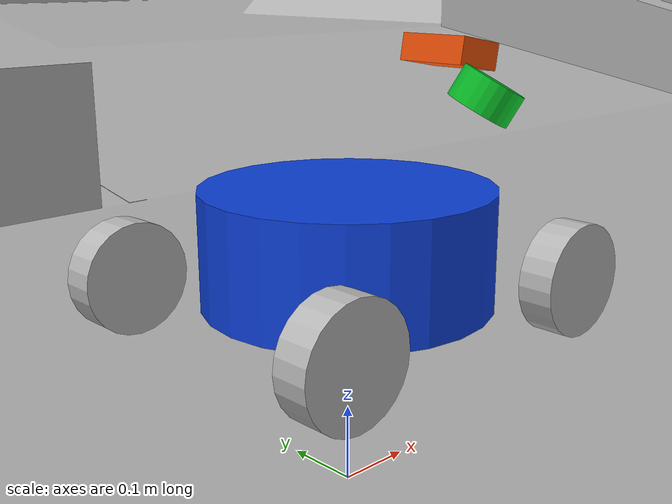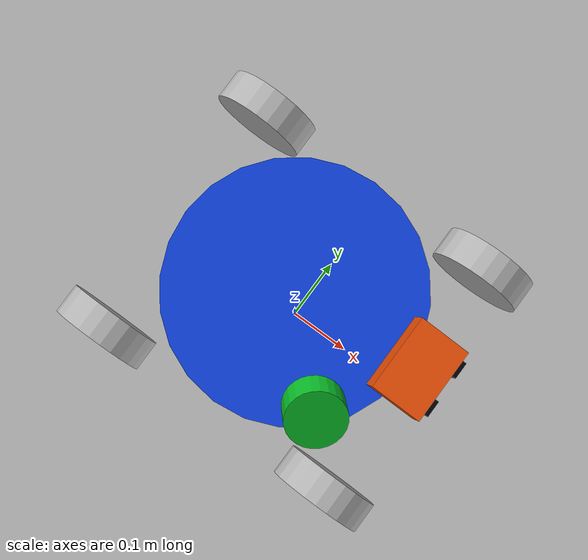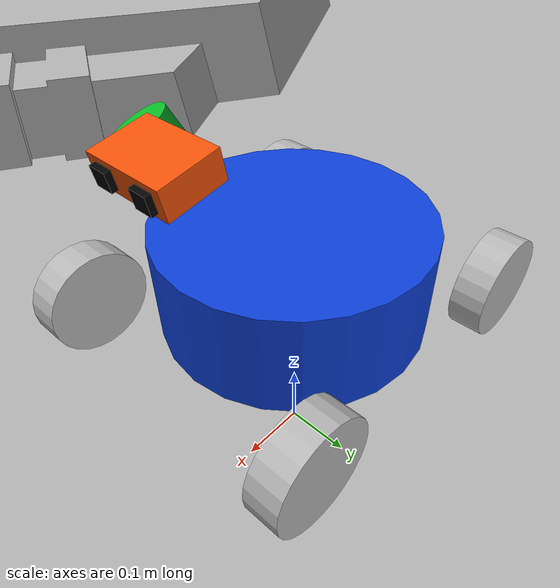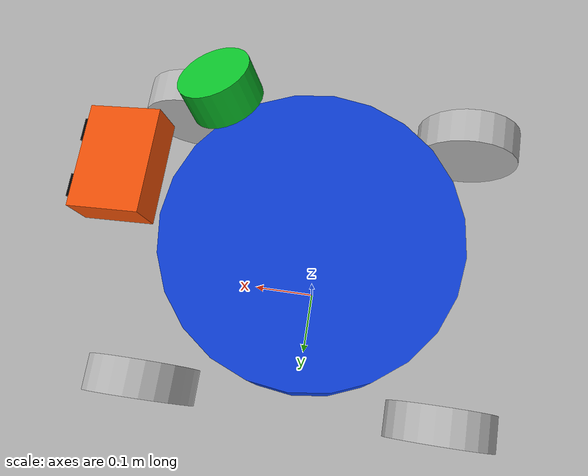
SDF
<?xml version="1.0"?>
<sdf version="1.9">
  <world name="rmuc_2025">
    <physics name="fast_step" type="ignored">
      <max_step_size>0.002</max_step_size>
      <real_time_factor>1.0</real_time_factor>
    </physics>
    <plugin filename="gz-sim-physics-system" name="gz::sim::systems::Physics"/>
    <plugin filename="gz-sim-user-commands-system" name="gz::sim::systems::UserCommands"/>
    <plugin filename="gz-sim-scene-broadcaster-system" name="gz::sim::systems::SceneBroadcaster"/>
    <plugin filename="gz-sim-sensors-system" name="gz::sim::systems::Sensors">
      <render_engine>ogre2</render_engine>
    </plugin>
    <plugin filename="gz-sim-imu-system" name="gz::sim::systems::Imu"/>

    <!-- Keep terrain readable on faces that are not reached by the sun. -->
    <scene>
      <ambient>0.45 0.45 0.45 1</ambient>
      <background>0.70 0.75 0.80 1</background>
      <shadows>true</shadows>
    </scene>

    <light type="directional" name="sun">
      <pose>0 0 12 0 0 0</pose>
      <cast_shadows>true</cast_shadows>
      <diffuse>0.95 0.95 0.92 1</diffuse>
      <specular>0.2 0.2 0.2 1</specular>
      <direction>-0.35 0.25 -0.9</direction>
    </light>
    <include>
      <uri>model://rmuc_2025</uri>
      <name>rmuc_2025_arena</name>
      <pose>-3.40 -9.50 0 0 0 0</pose>
    </include>
    <include>
      <uri>model://omni_base_mid360</uri>
      <name>omni_base</name>
      <pose>0 0 0.315 0 0 0</pose>
    </include>
    <model name="ground_plane">
      <static>true</static>
      <link name="link">
        <collision name="collision"><geometry><plane><normal>0 0 1</normal><size>100 100</size></plane></geometry></collision>
        <visual name="visual">
          <geometry><plane><normal>0 0 1</normal><size>100 100</size></plane></geometry>
          <material><ambient>0.50 0.50 0.50 1</ambient><diffuse>0.55 0.55 0.55 1</diffuse></material>
        </visual>
      </link>
    </model>
  </world>
</sdf>

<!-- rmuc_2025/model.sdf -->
<sdf version='1.6'>
  <model name='rmuc_2025'>
    <static>true</static>
    <link name='body'>
      <pose frame=''>14.5 8 0.2 0 0 0</pose>
      <self_collide>0</self_collide>
      <kinematic>0</kinematic>
      <gravity>1</gravity>
      <visual name='visual'>
        <geometry>
          <mesh>
            <!-- The display mesh omits four malformed 18.55 m perimeter walls. -->
            <uri>model://rmuc_2025/meshes/rmuc_2025_visual.stl</uri>
            <scale>1 1 1</scale>
          </mesh>
        </geometry>
        <material>
          <ambient>0.3 0.3 0.3 1</ambient>
          <diffuse>0.7 0.7 0.7 1</diffuse>
          <specular>0.01 0.01 0.01 1</specular>
        </material>
      </visual>
      <collision name='collision'>
        <geometry>
          <mesh>
            <uri>model://rmuc_2025/meshes/rmuc_2025.stl</uri>
            <scale>1 1 1</scale>
          </mesh>
        </geometry>
      </collision>
    </link>
  </model>
</sdf>

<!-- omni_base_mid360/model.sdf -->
<sdf version="1.9">
  <model name="omni_base_mid360" xmlns:gz="http://gazebosim.org/schema">
    <link name="base_link">
      <inertial>
        <mass>18.0</mass>
        <inertia>
          <ixx>0.176904</ixx>
          <iyy>0.176904</iyy>
          <izz>0.2916</izz>
        </inertia>
      </inertial>
      <collision name="collision">
        <geometry><cylinder><radius>0.18</radius><length>0.10</length></cylinder></geometry>
      </collision>
      <visual name="body">
        <geometry><cylinder><radius>0.18</radius><length>0.144</length></cylinder></geometry>
        <material>
          <ambient>0.04 0.18 0.55 1</ambient>
          <diffuse>0.05 0.25 0.85 1</diffuse>
        </material>
      </visual>
    </link>

    <!-- Gazebo cameras look along local +X. Positive pitch rotates +X toward
         the ground, so this mount faces forward with a 10-degree down tilt. -->
    <link name="oakd_camera_link">
      <pose relative_to="base_link">0.18 0 0.22 0 0.1745329252 0</pose>
      <inertial>
        <mass>0.1</mass>
        <inertia>
          <ixx>0.0002</ixx>
          <iyy>0.0002</iyy>
          <izz>0.0002</izz>
        </inertia>
      </inertial>
      <visual name="camera_body">
        <geometry><box><size>0.07 0.10 0.035</size></box></geometry>
        <material>
          <ambient>0.55 0.15 0.01 1</ambient>
          <diffuse>0.95 0.32 0.03 1</diffuse>
        </material>
      </visual>
      <visual name="left_lens">
        <pose>0.038 0.028 0 0 0 0</pose>
        <geometry><box><size>0.008 0.022 0.022</size></box></geometry>
        <material>
          <ambient>0.01 0.01 0.015 1</ambient>
          <diffuse>0.01 0.01 0.015 1</diffuse>
        </material>
      </visual>
      <visual name="right_lens">
        <pose>0.038 -0.028 0 0 0 0</pose>
        <geometry><box><size>0.008 0.022 0.022</size></box></geometry>
        <material>
          <ambient>0.01 0.01 0.015 1</ambient>
          <diffuse>0.01 0.01 0.015 1</diffuse>
        </material>
      </visual>
      <sensor name="oakd_imu" type="imu">
        <always_on>true</always_on>
        <update_rate>200</update_rate>
        <topic>/oakd/imu/raw</topic>
        <gz_frame_id>oakd_imu_link</gz_frame_id>
      </sensor>
      <sensor name="oakd_rgbd" type="rgbd_camera">
        <always_on>true</always_on>
        <update_rate>15</update_rate>
        <topic>rgbd_camera</topic>
        <camera>
          <horizontal_fov>1.21</horizontal_fov>
          <image>
            <width>640</width>
            <height>400</height>
          </image>
          <clip>
            <near>0.20</near>
            <far>8.0</far>
          </clip>
          <optical_frame_id>oakd_camera_optical_frame</optical_frame_id>
        </camera>
      </sensor>
    </link>
    <joint name="oakd_fixed_joint" type="fixed">
      <parent>base_link</parent>
      <child>oakd_camera_link</child>
    </joint>

    <link name="mid360_link">
      <pose relative_to="base_link">0.113137085 -0.113137085 0.18 0.5235987756 0 0.7853981634</pose>
      <inertial>
        <mass>0.265</mass>
        <inertia>
          <ixx>0.00035</ixx>
          <iyy>0.00035</iyy>
          <izz>0.00035</izz>
        </inertia>
      </inertial>
      <visual name="body">
        <geometry><cylinder><radius>0.04</radius><length>0.04</length></cylinder></geometry>
        <material>
          <ambient>0.02 0.38 0.08 1</ambient>
          <diffuse>0.04 0.75 0.16 1</diffuse>
        </material>
      </visual>
      <sensor name="mid360_imu" type="imu">
        <always_on>true</always_on>
        <update_rate>200</update_rate>
        <topic>/mid360/imu</topic>
        <gz_frame_id>mid360_link</gz_frame_id>
        <imu>
          <angular_velocity>
            <x><noise type="gaussian"><mean>0</mean><stddev>0.0002</stddev></noise></x>
            <y><noise type="gaussian"><mean>0</mean><stddev>0.0002</stddev></noise></y>
            <z><noise type="gaussian"><mean>0</mean><stddev>0.0002</stddev></noise></z>
          </angular_velocity>
          <linear_acceleration>
            <x><noise type="gaussian"><mean>0</mean><stddev>0.017</stddev></noise></x>
            <y><noise type="gaussian"><mean>0</mean><stddev>0.017</stddev></noise></y>
            <z><noise type="gaussian"><mean>0</mean><stddev>0.017</stddev></noise></z>
          </linear_acceleration>
        </imu>
      </sensor>
      <sensor name="mid360_lidar" type="gpu_lidar">
        <always_on>true</always_on>
        <visualize>false</visualize>
        <update_rate>20</update_rate>
        <topic>/mid360</topic>
        <gz_frame_id>mid360_link</gz_frame_id>
        <lidar>
          <scan>
            <horizontal>
              <samples>1875</samples>
              <resolution>1</resolution>
              <min_angle>0</min_angle>
              <max_angle>6.2831853072</max_angle>
            </horizontal>
            <vertical>
              <samples>32</samples>
              <resolution>1</resolution>
              <min_angle>-0.1221730476</min_angle>
              <max_angle>0.9075712110</max_angle>
            </vertical>
          </scan>
          <range>
            <min>0.10</min>
            <max>40.0</max>
            <resolution>0.01</resolution>
          </range>
          <noise>
            <type>gaussian</type>
            <mean>0</mean>
            <stddev>0.01</stddev>
          </noise>
        </lidar>
      </sensor>
    </link>
    <joint name="mid360_fixed_joint" type="fixed">
      <parent>base_link</parent>
      <child>mid360_link</child>
    </joint>

    <link name="front_left_wheel">
      <pose relative_to="base_link">0.19 0.19 -0.04 -1.5707 0 0</pose>
      <inertial><mass>0.8</mass><inertia><ixx>0.002</ixx><iyy>0.002</iyy><izz>0.001</izz></inertia></inertial>
      <collision name="collision">
        <geometry><sphere><radius>0.07</radius></sphere></geometry>
        <surface><friction><ode><mu>2.0</mu><mu2>0.6</mu2><fdir1 gz:expressed_in="base_link">1 -1 0</fdir1></ode></friction></surface>
      </collision>
      <visual name="visual"><geometry><cylinder><radius>0.07</radius><length>0.045</length></cylinder></geometry></visual>
    </link>
    <link name="front_right_wheel">
      <pose relative_to="base_link">0.19 -0.19 -0.04 -1.5707 0 0</pose>
      <inertial><mass>0.8</mass><inertia><ixx>0.002</ixx><iyy>0.002</iyy><izz>0.001</izz></inertia></inertial>
      <collision name="collision">
        <geometry><sphere><radius>0.07</radius></sphere></geometry>
        <surface><friction><ode><mu>2.0</mu><mu2>0.6</mu2><fdir1 gz:expressed_in="base_link">1 1 0</fdir1></ode></friction></surface>
      </collision>
      <visual name="visual"><geometry><cylinder><radius>0.07</radius><length>0.045</length></cylinder></geometry></visual>
    </link>
    <link name="rear_left_wheel">
      <pose relative_to="base_link">-0.19 0.19 -0.04 -1.5707 0 0</pose>
      <inertial><mass>0.8</mass><inertia><ixx>0.002</ixx><iyy>0.002</iyy><izz>0.001</izz></inertia></inertial>
      <collision name="collision">
        <geometry><sphere><radius>0.07</radius></sphere></geometry>
        <surface><friction><ode><mu>2.0</mu><mu2>0.6</mu2><fdir1 gz:expressed_in="base_link">1 1 0</fdir1></ode></friction></surface>
      </collision>
      <visual name="visual"><geometry><cylinder><radius>0.07</radius><length>0.045</length></cylinder></geometry></visual>
    </link>
    <link name="rear_right_wheel">
      <pose relative_to="base_link">-0.19 -0.19 -0.04 -1.5707 0 0</pose>
      <inertial><mass>0.8</mass><inertia><ixx>0.002</ixx><iyy>0.002</iyy><izz>0.001</izz></inertia></inertial>
      <collision name="collision">
        <geometry><sphere><radius>0.07</radius></sphere></geometry>
        <surface><friction><ode><mu>2.0</mu><mu2>0.6</mu2><fdir1 gz:expressed_in="base_link">1 -1 0</fdir1></ode></friction></surface>
      </collision>
      <visual name="visual"><geometry><cylinder><radius>0.07</radius><length>0.045</length></cylinder></geometry></visual>
    </link>

    <joint name="front_left_wheel_joint" type="revolute">
      <parent>base_link</parent><child>front_left_wheel</child>
      <axis><xyz>0 0 1</xyz><limit><lower>-1e16</lower><upper>1e16</upper></limit></axis>
    </joint>
    <joint name="front_right_wheel_joint" type="revolute">
      <parent>base_link</parent><child>front_right_wheel</child>
      <axis><xyz>0 0 1</xyz><limit><lower>-1e16</lower><upper>1e16</upper></limit></axis>
    </joint>
    <joint name="rear_left_wheel_joint" type="revolute">
      <parent>base_link</parent><child>rear_left_wheel</child>
      <axis><xyz>0 0 1</xyz><limit><lower>-1e16</lower><upper>1e16</upper></limit></axis>
    </joint>
    <joint name="rear_right_wheel_joint" type="revolute">
      <parent>base_link</parent><child>rear_right_wheel</child>
      <axis><xyz>0 0 1</xyz><limit><lower>-1e16</lower><upper>1e16</upper></limit></axis>
    </joint>

    <plugin filename="gz-sim-mecanum-drive-system" name="gz::sim::systems::MecanumDrive">
      <front_left_joint>front_left_wheel_joint</front_left_joint>
      <front_right_joint>front_right_wheel_joint</front_right_joint>
      <back_left_joint>rear_left_wheel_joint</back_left_joint>
      <back_right_joint>rear_right_wheel_joint</back_right_joint>
      <wheel_separation>0.38</wheel_separation>
      <wheelbase>0.38</wheelbase>
      <wheel_radius>0.07</wheel_radius>
      <topic>/cmd_vel</topic>
      <odom_topic>/model/omni_base/wheel_odometry</odom_topic>
      <tf_topic>/model/omni_base/wheel_tf</tf_topic>
      <frame_id>odom</frame_id>
      <child_frame_id>base_link</child_frame_id>
      <odom_publish_frequency>50</odom_publish_frequency>
      <min_acceleration>-1.5</min_acceleration>
      <max_acceleration>1.5</max_acceleration>
    </plugin>
    <plugin filename="gz-sim-odometry-publisher-system" name="gz::sim::systems::OdometryPublisher">
      <odom_frame>odom</odom_frame>
      <robot_base_frame>base_link</robot_base_frame>
      <dimensions>2</dimensions>
      <odom_topic>/visual_slam/tracking/odometry</odom_topic>
      <tf_topic>/tf</tf_topic>
      <odom_publish_frequency>50</odom_publish_frequency>
    </plugin>
    <plugin filename="gz-sim-joint-state-publisher-system" name="gz::sim::systems::JointStatePublisher">
      <joint_name>front_left_wheel_joint</joint_name>
      <joint_name>front_right_wheel_joint</joint_name>
      <joint_name>rear_left_wheel_joint</joint_name>
      <joint_name>rear_right_wheel_joint</joint_name>
      <topic>/joint_states</topic>
      <update_rate>30</update_rate>
    </plugin>
  </model>
</sdf>
